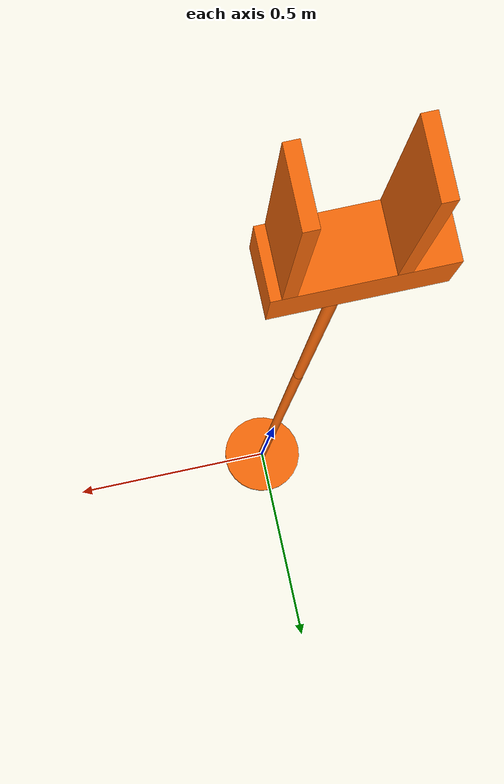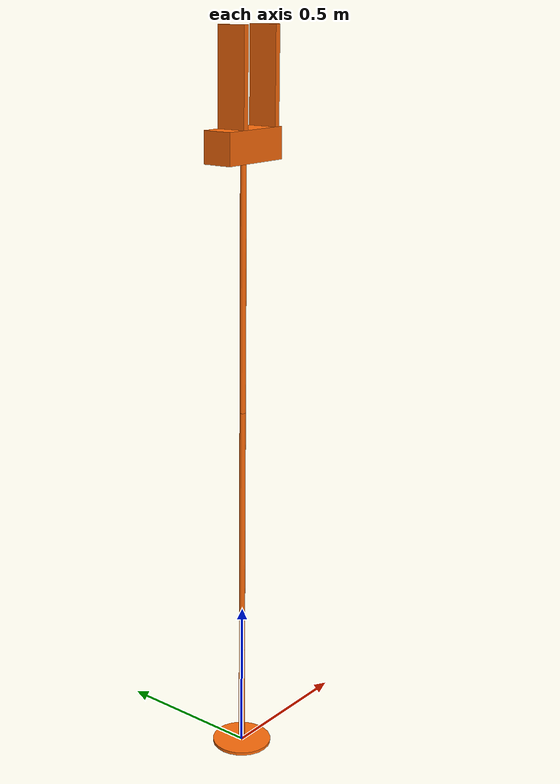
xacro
<?xml version="1.0"?>
<robot name="robotic_arm" xmlns:xacro="http://www.ros.org/wiki/xacro">
<!-- roslaunch urdf_tutorial display.launch model:='$(find custom_robotic_arm)/urdf/robotic_arm.urdf' -->
<!--roslaunch custom_robotic_arm  arm_gazebo.launch-->
    <link name="world"/>

    <joint name="fixed_joint" type="fixed">
        <parent link="world"/>
        <child link="base_link"/>
    </joint>

    <link name="base_link">
        <inertial>
            <origin xyz="0.0 0.0 0.0" rpy="0.0 0.0 0.0"/>
            <mass value="1"/>
            <inertia ixx="027" ixy="0.0" ixz="0.0" iyy="0.0027" iyz="0.0" izz="0.005"/>
        </inertial>
        <visual name="Shoulder">
            <origin xyz="0.0 0.0 0.0" rpy="0.0 0.0 0.0"/>
            <geometry>
                <cylinder radius="0.1" length="0.01"/>
            </geometry>
            <material name="Orange">
                <color rgba="${255/255} ${108/255} ${10/255} 1"/>
            </material>
        </visual>
        <collision>
            <origin xyz="0.0 0.0 0.000" rpy="0.0 0.0 0.0"/>
            <geometry>
                <cylinder radius="0.1" length="0.01"/>
            </geometry>
        </collision>
    </link>

    <joint name="S_joint_x" type="continuous">
        <parent link="base_link"/>
        <child link="link1"/>
        <origin xyz="0.0 0.0 0.0" rpy="0.0 0.0 0.0"/>
        <axis xyz="0.0 0.0 1.0"/>
    </joint>

    <link name="link1">
        <inertial>
            <origin xyz="0.0 0.0 ${0.35/2}" rpy="0.0 0.0 0.0"/>
            <mass value="1"/>
            <inertia ixx="0.023" iyy="0.023" izz="0.023" ixy="0.0" ixz="0.0"  iyz="0.0" />
        </inertial>
        <visual name="Shoulder">
            <origin xyz="0.0 0.0 ${0.35/2}" rpy="0.0 0.0 0.0"/>
            <geometry>
                <cylinder radius="0.01" length="0.35"/>
            </geometry>
            <material name="Orange">
                <color rgba="${255/255} ${108/255} ${10/255} 1"/>
            </material>
        </visual>
        <collision>
            <origin xyz="0.0 0.0 ${0.35/2}" rpy="0.0 0.0 0.0"/>
            <geometry>
                <cylinder radius="0.1" length="0.01"/>
            </geometry>
        </collision>
    </link>

    <joint name="S_joint_y" type="continuous">
        <parent link="link1"/>
        <child link="Upper_arm"/>
        <origin xyz="0.0 0.0 0.35" rpy="0.0 0 0.0"/>
        <axis xyz="0.0 1.0 0"/>
    </joint>

    <link name="Upper_arm">
        <inertial>
            <origin xyz="0.0 0.0 ${0.85/2}" rpy="0.0 0 0.0"/>
            <mass value="1"/>
            <inertia ixx="0.023" iyy="0.023" izz="0.023" ixy="0.0" ixz="0.0"  iyz="0.0" />
        </inertial>
        <visual name="Shoulder">
            <origin xyz="0.0 0.0 ${0.85/2}" rpy="0.0 0 0.0"/>
            <geometry>
                <cylinder radius="0.01" length="0.85"/>
            </geometry>
            <material name="Orange">
                <color rgba="${255/255} ${108/255} ${10/255} 1"/>
            </material>
        </visual>
        <collision>
            <origin xyz="0.0 0.0 ${0.85/2}" rpy="0.0 0 0.0"/>
            <geometry>
                <cylinder radius="0.1" length="0.01"/>
            </geometry>
        </collision>
    </link>

    <joint name="E_joint" type="continuous">
        <parent link="Upper_arm"/>
        <child link="Elbow"/>
        <origin xyz="0 0 0.85" rpy="0 0 0" />
        <axis xyz="0 1 0" />
    </joint>

    <link name="Elbow">
        <inertial>
            <origin xyz="0.0 0.0 ${0.8/2}" rpy="0.0 0 0.0"/>
            <mass value="1"/>
            <inertia ixx="0.023" iyy="0.023" izz="0.023" ixy="0.0" ixz="0.0"  iyz="0.0" />
        </inertial>
        <visual name="Shoulder">
            <origin xyz="0.0 0.0 ${0.8/2}" rpy="0.0 0 0.0"/>
            <geometry>
                <cylinder radius="0.01" length="0.8"/>
            </geometry>
            <material name="Orange">
                <color rgba="${255/255} ${108/255} ${10/255} 1"/>
            </material>
        </visual>
        <collision>
            <origin xyz="0.0 0.0 ${0.8/2}" rpy="0.0 0 0.0"/>
            <geometry>
                <cylinder radius="0.1" length="0.01"/>
            </geometry>
        </collision>
    </link>

    <joint name="W_joint" type="continuous">
        <parent link="Elbow"/>
        <child link="Wrist"/>
        <origin xyz="0 0 0.8" rpy="0 0 0" />
        <axis xyz="0 0 1" />
    </joint>

    <link name="Wrist">
        <inertial>
            <origin xyz="0.0 0.0 ${0.1/2}" rpy="0.0 0 0.0"/>
            <mass value="1"/>
            <inertia ixx="0.023" iyy="0.023" izz="0.023" ixy="0.0" ixz="0.0"  iyz="0.0" />
        </inertial>
        <visual name="Shoulder">
            <origin xyz="0.0 0.0 ${0.1/2}" rpy="0.0 0 0.0"/>
            <geometry>
               <box size="0.25 0.1 0.1"/>
            </geometry>
            <material name="Orange">
                <color rgba="${255/255} ${108/255} ${10/255} 1"/>
            </material>
        </visual>
        <collision>
            <origin xyz="0.0 0.0 ${0.1/2}" rpy="0.0 0 0.0"/>
           <geometry>
               <box size="0.15 0.1 0.1"/>
            </geometry>
        </collision>
    </link>

    <joint name="Thumb_joint" type="prismatic">
        <parent link="Wrist"/>
        <child link="Thumb"/>
        <origin xyz=".1 0 .1" rpy="0 0 0" />
        <axis xyz="1 0 0" />
        <limit lower="0" upper="0.1" effort="1000" velocity="5"/>
    </joint>

    <link name="Thumb">
        <inertial>
            <origin xyz="0 0 ${0.3/2}" rpy="0.0 0 0.0"/>
            <mass value="1"/>
            <inertia ixx="0.023" iyy="0.023" izz="0.023" ixy="0.0" ixz="0.0"  iyz="0.0" />
        </inertial>
        <visual name="Shoulder">
            <origin xyz="0 0 ${0.3/2}" rpy="0.0 0 0.0"/>
            <geometry>
               <box size="0.02 0.1 0.3"/>
            </geometry>
            <material name="Orange">
                <color rgba="${255/255} ${108/255} ${10/255} 1"/>
            </material>
        </visual>
        <collision>
            <origin xyz="0 0 ${0.3/2}" rpy="0.0 0 0.0"/>
           <geometry>
               <box size="0.15 0.1 0.1"/>
            </geometry>
        </collision>
    </link>

    <joint name="Index_finger_joint" type="prismatic">
        <parent link="Wrist"/>
        <child link="Index_finger"/>
        <origin xyz="-0.05 0 .1" rpy="0 0 0" />
        <axis xyz="1 0 0" />
        <limit lower="-0.05" upper="0.1" effort="1000" velocity="5"/>
    </joint>

    <link name="Index_finger">
        <inertial>
            <origin xyz="0 0 ${0.3/2}" rpy="0.0 0 0.0"/>
            <mass value="1"/>
            <inertia ixx="0.023" iyy="0.023" izz="0.023" ixy="0.0" ixz="0.0"  iyz="0.0" />
        </inertial>
        <visual name="Shoulder">
            <origin xyz="0 0 ${0.3/2}" rpy="0.0 0 0.0"/>
            <geometry>
               <box size="0.02 0.1 0.3"/>
            </geometry>
            <material name="Orange">
                <color rgba="${255/255} ${108/255} ${10/255} 1"/>
            </material>
        </visual>
        <collision>
            <origin xyz="0 0 ${0.3/2}" rpy="0.0 0 0.0"/>
           <geometry>
               <box size="0.15 0.1 0.1"/>
            </geometry>
        </collision>
    </link>

<!-- TRANSMISSION   -->

<!--Sh_Joint_x-->

<transmission name="Trans_1">
    <type>transmission_interface/SimpeTransmission</type>
    <joint name="S_joint_x">
        <hardwareInterface>PositionJointInterface</hardwareInterface>
    </joint>

    <actuator name="Motor1">
        <hardwareInterface>PositionJointInterface</hardwareInterface>
        <mechanicalReduction>1</mechanicalReduction>

    </actuator>

</transmission>

<!--S_joint_y-->
<transmission name="Trans_2">
    <type>transmission_interface/SimpeTransmission</type>
    <joint name="S_joint_y">
        <hardwareInterface>PositionJointInterface</hardwareInterface>
    </joint>

    <actuator name="Motor2">
        <hardwareInterface>PositionJointInterface</hardwareInterface>
        <mechanicalReduction>1</mechanicalReduction>

    </actuator>

</transmission>

<!--E_joint-->
<transmission name="Trans_3">
    <type>transmission_interface/SimpeTransmission</type>
    <joint name="E_joint">
        <hardwareInterface>PositionJointInterface</hardwareInterface>
    </joint>

    <actuator name="Motor3">
        <hardwareInterface>PositionJointInterface</hardwareInterface>
        <mechanicalReduction>1</mechanicalReduction>

    </actuator>

</transmission>

<!--W_joint-->
<transmission name="Trans_4">
    <type>transmission_interface/SimpeTransmission</type>
    <joint name="W_joint">
        <hardwareInterface>PositionJointInterface</hardwareInterface>
    </joint>

    <actuator name="Motor4">
        <hardwareInterface>PositionJointInterface</hardwareInterface>
        <mechanicalReduction>1</mechanicalReduction>

    </actuator>

</transmission>

<!-- tell gazebo that we have a controller for this urdf file-->
<gazebo>
    <plugin name="control" filename="libgazebo_ros_control.so"/>
</gazebo>

<!--  keep controller.yaml file in config folder in workspace-->
<!--  In launch file also inform the location of controller file-->
<!--  we can see the list of topics in which controller topics will be published
    using rostopic list-->

<gazebo>
    <plugin name="joint_state_publisher" filename="libgazebo_ros_joint_state_publisher.so">
        <jointName>S_joint_x, S_joint_y, E_joint, W_joint</jointName>
    </plugin>
</gazebo>
</robot>
